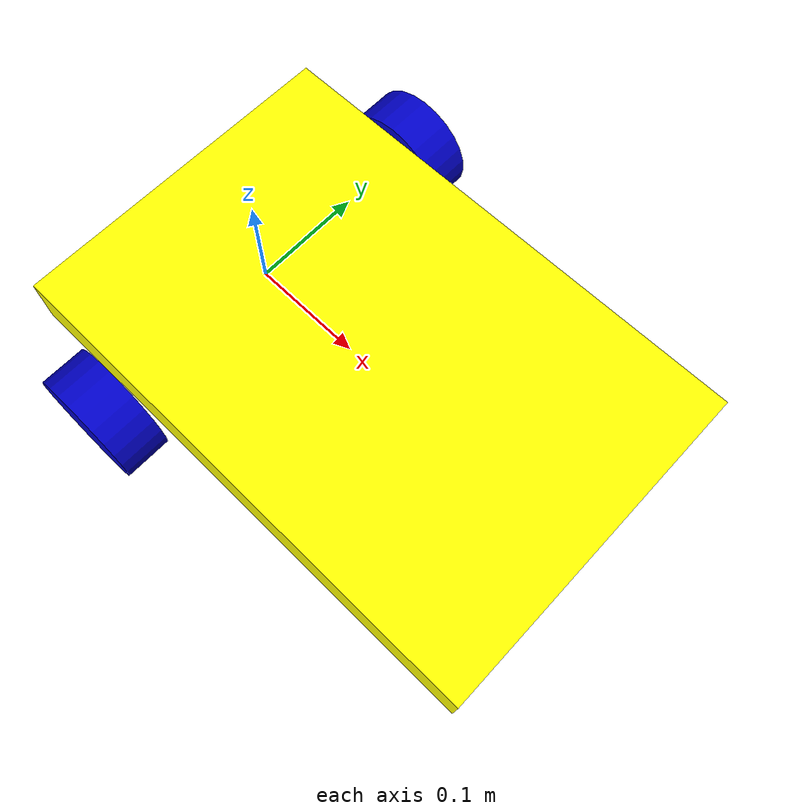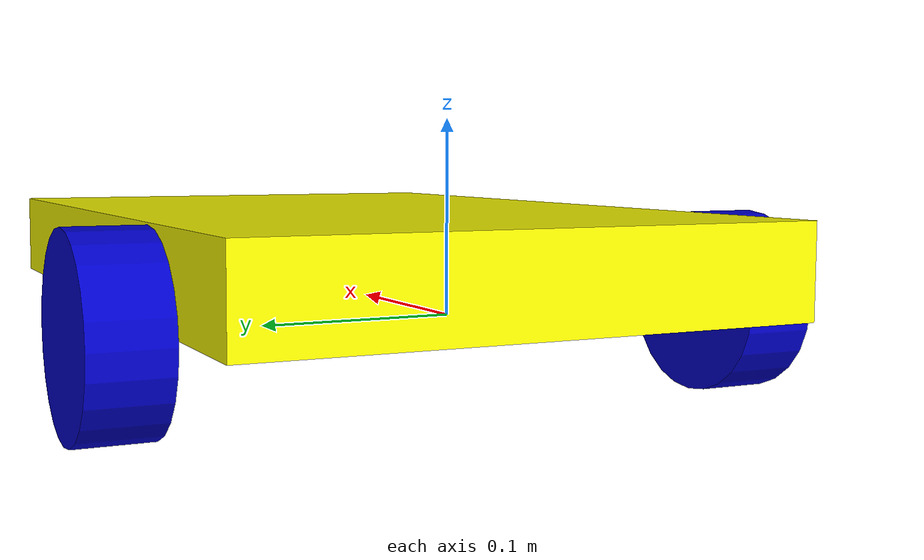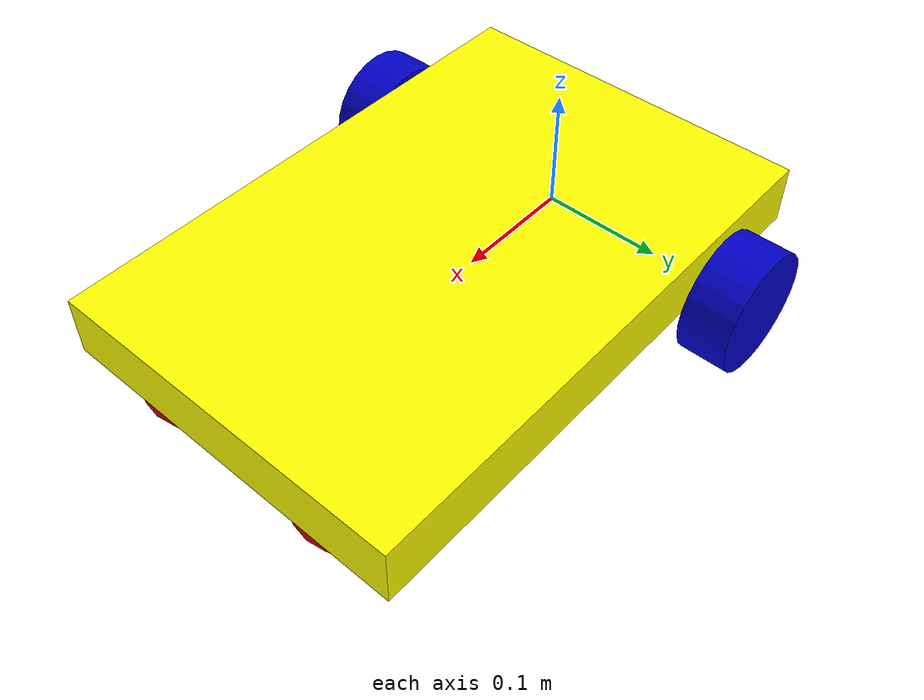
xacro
<?xml version="1.0"?>
<robot xmlns:xacro="http://www.ros.org/wiki/xacro">

    <xacro:include filename="macro_inertia.xacro"/>

    <!-- Colors -->

    <material name="black">
        <color rgba="0.0 0.0 0.0 1.0"/>
    </material>

    <material name="dark">
        <color rgba="0.3 0.3 0.3 1.0"/>
    </material>
    <material name="light_black">
        <color rgba="0.4 0.4 0.4 1.0"/>
    </material>

    <material name="blue">
        <color rgba="0.0 0.0 0.8 1.0"/>
    </material>

    <material name="green">
        <color rgba="0.0 0.8 0.0 1.0"/>
    </material>

    <material name="grey">
        <color rgba="0.5 0.5 0.5 1.0"/>
    </material>

    <material name="yellow">
        <color rgba="1.0 1.0 0.0 1.0"/>
    </material>

    <material name="orange">
        <color rgba="${255/255} ${108/255} ${10/255} 1.0"/>
    </material>

    <material name="brown">
        <color rgba="${222/255} ${207/255} ${195/255} 1.0"/>
    </material>

    <material name="red">
        <color rgba="0.8 0.0 0.0 1.0"/>
    </material>

    <material name="white">
        <color rgba="1.0 1.0 1.0 1.0"/>
    </material>

    <!-- Base Link -->
    <link name="base_link"></link>

    <!-- Base Footprint -->
    <joint name="base_footprint_joint" type="fixed">
        <parent link="base_link"/>
        <child link="base_footprint"/>
        <origin xyz="0 0 0" rpy="0 0 0"/>
    </joint>

    <link name="base_footprint"></link>

    <!-- CHASSIS LINK-->
    <joint name="chassis_joint" type="fixed">
        <parent link ="base_link"/>
        <child link ="chassis"/>
        <origin xyz="-0.1 0 0"/>
    </joint>

    <link name="chassis">
        <visual>
            <origin xyz="0.225 0 0.025"/>
            <geometry>
                <box size="0.45 0.3 0.05"/>
            </geometry>
            <material name="yellow"/>
        </visual>
        <collision>
            <origin xyz="0.225 0 0.025"/>
            <geometry>
                <box size="0.45 0.3 0.05"/>
            </geometry>
        </collision>
        <xacro:inertial_box mass="0.5" x="0.45" y="0.3" z="0.05">
            <origin xyz="0.225 0 0.025" rpy="0 0 0"/>
        </xacro:inertial_box>
    </link>

    <!-- LEFT WHEEL LINK -->

    <joint name="left_wheel_joint" type="continuous">
        <parent link="base_link"/>
        <child link="left_wheel"/>
        <origin xyz="0 0.175 0" rpy="-${pi/2} 0 0" />
        <axis xyz="0 0 1"/>
    </joint>

    <link name="left_wheel">
        <visual>
            <geometry>
                <cylinder radius="0.05" length="0.04"/>
            </geometry>
            <material name="blue"/>
        </visual>
        <collision>
            <geometry>
                <cylinder radius="0.05" length="0.04"/>
            </geometry>
        </collision>
        <xacro:inertial_cylinder mass="0.1" length="0.04" radius="0.05">
            <origin xyz="0 0 0" rpy="0 0 0"/>
        </xacro:inertial_cylinder>
    </link>

    <!-- RIGHT WHEEL LINK -->

    <joint name="right_wheel_joint" type="continuous">
        <parent link="base_link"/>
        <child link="right_wheel"/>
        <origin xyz="0 -0.175 0" rpy="${pi/2} 0 0" />
        <axis xyz="0 0 -1"/>
    </joint>

    <link name="right_wheel">
        <visual>
            <geometry>
                <cylinder radius="0.05" length="0.04"/>
            </geometry>
            <material name="blue"/>
        </visual>
        <collision>
            <geometry>
                <cylinder radius="0.05" length="0.04"/>
            </geometry>
        </collision>
        <xacro:inertial_cylinder mass="0.1" length="0.04" radius="0.05">
            <origin xyz="0 0 0" rpy="0 0 0"/>
        </xacro:inertial_cylinder>
    </link>

    <!-- LEFT CASTER WHEEL LINK -->

    <joint name="left_caster_wheel_joint" type="fixed">
        <parent link="base_link"/>
        <child link="left_caster_wheel"/>
        <origin xyz="0.3 0.075 0"/>
    </joint>

    <link name="left_caster_wheel">
        <visual>
            <geometry>
                <sphere radius="0.05"/>
            </geometry>
            <material name="red"/>
        </visual>
        <collision>
            <geometry>
                <sphere radius="0.05"/>
            </geometry>

            <surface>
                <friction>
                    <ode>
                        <mu>0.001</mu>
                        <mu2>0.001</mu2>
                    </ode>
                </friction>
            </surface>

        </collision>
        <xacro:inertial_sphere mass="0.1" radius="0.05">
            <origin xyz="0 0 0" rpy="0 0 0"/>
        </xacro:inertial_sphere>
    </link>

    <gazebo reference="left_caster_wheel">
        <material>Gazebo/Yellow</material>
        <mu1 value="0.001"/>
        <mu2 value="0.001"/>
    </gazebo>

    <!-- RIGHT CASTER WHEEL LINK -->

    <joint name="right_caster_wheel_joint" type="fixed">
        <parent link="base_link"/>
        <child link="right_caster_wheel"/>
        <origin xyz="0.3 -0.075 0"/>
    </joint>

    <link name="right_caster_wheel">
        <visual>
            <geometry>
                <sphere radius="0.05"/>
            </geometry>
            <material name="red"/>
        </visual>
        <collision>
            <geometry>
                <sphere radius="0.05"/>
            </geometry>

            <surface>
                <friction>
                    <ode>
                        <mu>0.001</mu>
                        <mu2>0.001</mu2>
                    </ode>
                </friction>
            </surface>

        </collision>
        <xacro:inertial_sphere mass="0.1" radius="0.05">
            <origin xyz="0 0 0" rpy="0 0 0"/>
        </xacro:inertial_sphere>
    </link>

    <gazebo reference="right_caster_wheel">
        <material>Gazebo/Yellow</material>
        <mu1 value="0.001"/>
        <mu2 value="0.001"/>
    </gazebo>

</robot>
